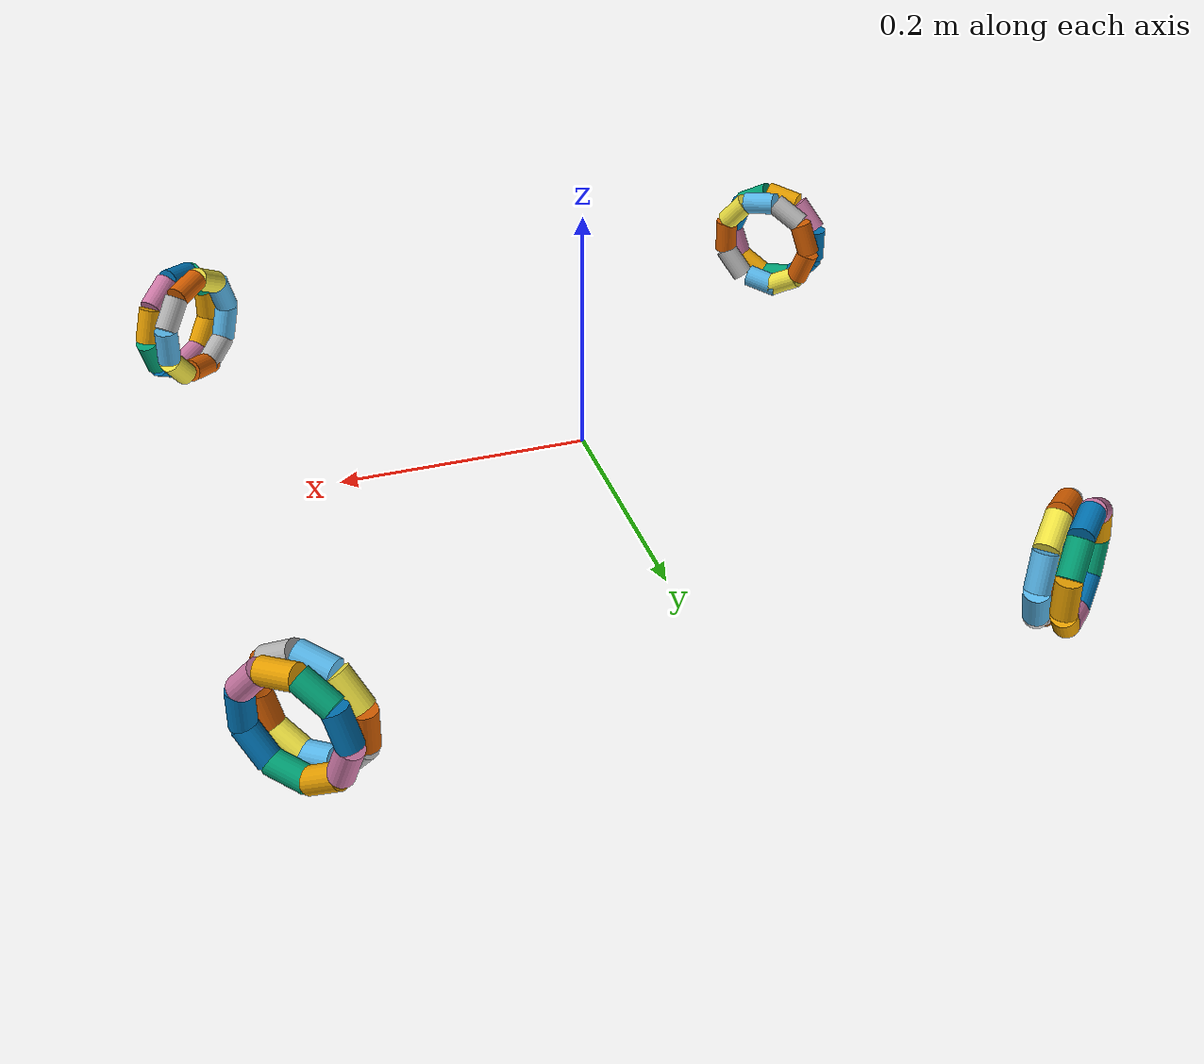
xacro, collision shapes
<?xml version='1.0'?>
<robot name="4_wheel_omni" xmlns:xacro="http://www.ros.org/wiki/xacro">
  <xacro:include filename="$(find quadwheel)/model/connector.xacro"/>
  <xacro:include filename="$(find quadwheel)/model/ros2_control.xacro"/>

  <!-- World Link -->
  <link name="base_link" />
  <joint name="base_to_chassis" type="fixed">
    <parent link="base_link"/>
    <child link="chassis"/>
  </joint>

  <!-- Chassis -->
  <link name="chassis">
    <visual>
      <origin xyz="0 0 0" rpy="0 0 0" />
      <geometry>
        <mesh filename="file://$(find quadwheel)/meshes/chassis.stl" />
      </geometry>
      <material name="">
        <color rgba="1 1 0 1" />
      </material>
    </visual>
    <inertial>
      <origin xyz="0 0 0" rpy="0 0 0" />
      <mass value="1"/>
      <inertia ixx="0.0001" ixy="0.0" ixz="0.0" iyy="0.0001" iyz="0.0" izz="0.0001"/>
    </inertial>

  </link>

  <gazebo reference="chassis">
    <mu1>0.2</mu1>
    <mu2>0.2</mu2>
    <material>Gazebo/Green</material>
  </gazebo>

  <!--Wheel Rims -->
  <xacro:connector name="1" parent="chassis" xyz="0.228 0.228 0.01" rpy="1.57 0 -0.7854" GAZEBO_color = "Gazebo/Red"/>
  <xacro:connector name="2" parent="chassis" xyz="0.228 -0.228 0.01" rpy="1.57 0 -2.3562" GAZEBO_color = "Gazebo/Blue"/>
  <xacro:connector name="3" parent="chassis" xyz="-0.228 -0.228 0.01" rpy="1.57 0 -3.9270" GAZEBO_color = "Gazebo/Green"/>
  <xacro:connector name="4" parent="chassis" xyz="-0.228 0.228 0.01" rpy="1.57 0 -5.4978" GAZEBO_color = "Gazebo/Yellow"/>

  <!-- Motors (May not need!)-->
  <transmission name="tran1">
    <type>transmission_interface/SimpleTransmission</type>
    <joint name="chassis_C1_joint">
      <hardwareInterface>hardware_interface/EffortJointInterface</hardwareInterface>
    </joint>
    <actuator name="motor1">
      <hardwareInterface>hardware_interface/EffortJointInterface</hardwareInterface>
      <mechanicalReduction>1</mechanicalReduction>
    </actuator>
  </transmission>

  <transmission name="tran2">
    <type>transmission_interface/SimpleTransmission</type>
    <joint name="chassis_C2_joint">
      <hardwareInterface>hardware_interface/EffortJointInterface</hardwareInterface>
    </joint>
    <actuator name="motor2">
      <hardwareInterface>hardware_interface/EffortJointInterface</hardwareInterface>
      <mechanicalReduction>1</mechanicalReduction>
    </actuator>
  </transmission>

  <transmission name="tran3">
    <type>transmission_interface/SimpleTransmission</type>
    <joint name="chassis_C3_joint">
      <hardwareInterface>hardware_interface/EffortJointInterface</hardwareInterface>
    </joint>
    <actuator name="motor3">
      <hardwareInterface>hardware_interface/EffortJointInterface</hardwareInterface>
      <mechanicalReduction>1</mechanicalReduction>
    </actuator>
  </transmission>

  <transmission name="tran4">
    <type>transmission_interface/SimpleTransmission</type>
    <joint name="chassis_C4_joint">
      <hardwareInterface>hardware_interface/EffortJointInterface</hardwareInterface>
    </joint>
    <actuator name="motor4">
      <hardwareInterface>hardware_interface/EffortJointInterface</hardwareInterface>
      <mechanicalReduction>1</mechanicalReduction>
    </actuator>
  </transmission>

</robot>

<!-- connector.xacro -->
<robot xmlns:xacro="http://www.ros.org/wiki/xacro">
<xacro:include filename="$(find quadwheel)/model/rim.xacro"/>
<xacro:macro name="connector" params="name parent xyz rpy GAZEBO_color">
  <link name="C${name}">
    <inertial>
      <origin xyz="0 0 -0.0286" rpy="0 0 0" />
      <mass value="0.10"/>
      <inertia ixx="7.6e-5" ixy="0.0" ixz="0.0" iyy="7.6e-5" iyz="0.0" izz="0.000125"/>
    </inertial>

    <visual>
      <origin xyz="0 0 -0.0286" rpy="0 0 0" />
      <geometry>
        <cylinder radius="0.0318" length="0.0572"/>
      </geometry>
    </visual>

  </link>

  <joint name="${parent}_C${name}_joint" type="continuous">
    <parent link="${parent}"/>
    <child link="C${name}"/>
    <origin xyz = "${xyz}" rpy = "${rpy}"/>
    <axis xyz = "0 0 1"/>
    <limit velocity="1.0" effort="30" />
  </joint>

  <!-- Wheel Rims -->
  <xacro:rim name="wheel_${name}" parent="C${name}" xyz="0 0 -0.0572" rpy="0 0 0" GAZEBO_color = "${GAZEBO_color}"/>

  <gazebo reference="C${name}">
    <material value= "${GAZEBO_color}"/>
  </gazebo>

</xacro:macro>
</robot>

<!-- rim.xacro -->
<robot xmlns:xacro="http://www.ros.org/wiki/xacro">
<xacro:include filename="$(find quadwheel)/model/roller.xacro"/>
<xacro:macro name="rim" params="name parent xyz rpy GAZEBO_color">
  <link name="rim_${name}_link">
    <inertial>
      <origin xyz="0 0 -0.0182" rpy="0 0 0" />
      <mass value="0.10"/>
      <inertia ixx="7.6e-5" ixy="0.0" ixz="0.0" iyy="7.6e-5" iyz="0.0" izz="0.000125"/>
    </inertial>

    <visual>
      <origin xyz="0 0 -0.0182" rpy="0 0 0" />
      <geometry>
        <cylinder radius="0.050" length="0.0364"/>
      </geometry>
    </visual>

  </link>

  <joint name="${parent}_rim_${name}_joint" type="fixed">
    <parent link="${parent}"/>
    <child link="rim_${name}_link"/>
    <axis xyz = "0 0 1"/>
    <origin xyz = "${xyz}" rpy = "${rpy}"/>

  </joint>

<xacro:roller name="1" parent="${name}"  xyz="0.0415 0 -0.0284" rpy="1.57 0 0" GAZEBO_color = "${GAZEBO_color}"/>
<xacro:roller name="2" parent="${name}"  xyz="0.0390 0.0142 -0.008" rpy="1.57 0 0.3491" GAZEBO_color = "${GAZEBO_color}"/>
<xacro:roller name="3" parent="${name}"  xyz="0.0318 0.0267 -0.0284" rpy="1.57 0 0.6981" GAZEBO_color = "${GAZEBO_color}"/>
<xacro:roller name="4" parent="${name}"  xyz="0.0208 0.0359 -0.008" rpy="1.57 0 1.0472" GAZEBO_color = "${GAZEBO_color}"/>
<xacro:roller name="5" parent="${name}"  xyz="0.0072 0.0409 -0.0284" rpy="1.57 0 1.3963" GAZEBO_color = "${GAZEBO_color}"/>
<xacro:roller name="6" parent="${name}"  xyz="-0.0072 0.0409 -0.008" rpy="1.57 0 1.7453" GAZEBO_color = "${GAZEBO_color}"/>
<xacro:roller name="7" parent="${name}"  xyz="-0.0208 0.0359 -0.0284" rpy="1.57 0 2.0944" GAZEBO_color = "${GAZEBO_color}"/>
<xacro:roller name="8" parent="${name}"  xyz="-0.0318 0.0267 -0.008" rpy="1.57 0 2.4435" GAZEBO_color = "${GAZEBO_color}"/>
<xacro:roller name="9" parent="${name}"  xyz="-0.0390 0.0142 -0.0284" rpy="1.57 0 2.7925" GAZEBO_color = "${GAZEBO_color}"/>
<xacro:roller name="10" parent="${name}"  xyz="-0.0415 0 -0.008" rpy="1.57 0 3.1416" GAZEBO_color = "${GAZEBO_color}"/>
<xacro:roller name="11" parent="${name}"  xyz="-0.0390 -0.0142 -0.0284" rpy="1.57 0 3.4907" GAZEBO_color = "${GAZEBO_color}"/>
<xacro:roller name="12" parent="${name}"  xyz="-0.0318 -0.0267 -0.008" rpy="1.57 0 3.8397" GAZEBO_color = "${GAZEBO_color}"/>
<xacro:roller name="13" parent="${name}"  xyz="-0.0208 -0.0359 -0.0284" rpy="1.57 0 4.1888" GAZEBO_color = "${GAZEBO_color}"/>
<xacro:roller name="14" parent="${name}"  xyz="-0.00072 -0.0409 -0.008" rpy="1.57 0 4.5379" GAZEBO_color = "${GAZEBO_color}"/>
<xacro:roller name="15" parent="${name}"  xyz="0.0072 -0.0409 -0.0284" rpy="1.57 0 4.8869" GAZEBO_color = "${GAZEBO_color}"/>
<xacro:roller name="16" parent="${name}"  xyz="0.0208 -0.0359 -0.008" rpy="1.57 0 5.2360" GAZEBO_color = "${GAZEBO_color}"/>
<xacro:roller name="17" parent="${name}"  xyz="0.0318 -0.0267 -0.0284" rpy="1.57 0 5.5851" GAZEBO_color = "${GAZEBO_color}"/>
<xacro:roller name="18" parent="${name}"  xyz="0.0390 -0.0142 -0.008" rpy="1.57 0 5.9341" GAZEBO_color = "${GAZEBO_color}"/>

<gazebo reference="rim_${name}_link">
  <material value= "${GAZEBO_color}"/>
</gazebo>

</xacro:macro>
</robot>

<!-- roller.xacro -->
<robot xmlns:xacro="http://www.ros.org/wiki/xacro">
  <xacro:macro name="roller" params="name parent xyz rpy GAZEBO_color">
  <link name="roller_${name}_rim_${parent}_link">
    <inertial>
      <origin xyz="0 0 0" rpy="0 0 0" />
      <inertia ixx="1e-6" ixy="0.0" ixz="0.0" iyy="1e-6" iyz="0.0" izz="1e-7"/>
      <mass value="0.010"/>
    </inertial>
    <visual>
      <origin xyz="0 0 0" rpy="0 0 0" />
      <geometry>
        <cylinder radius="0.01" length="0.03"/>
      </geometry>
    </visual>

    <collision>
      <origin xyz="0 0 0" rpy="0 0 0" />
      <geometry>
        <cylinder radius="0.01" length="0.03"/>
      </geometry>
    </collision>
  </link>

  <joint name="roller_${name}_rim_${parent}_joint" type="continuous">
    <parent link="rim_${parent}_link"/>
    <child link="roller_${name}_rim_${parent}_link"/>
    <axis xyz="0 0 1"/>
    <origin xyz="${xyz}" rpy="${rpy}"/>
    <limit effort="1000" velocity="31.4"/>
  </joint>

  <gazebo reference="roller_${name}_rim_${parent}_link">
    <mu1 value="0.001"/>
    <mu2 value="0.002"/>
    <material value= "Gazebo/Grey"/>
  </gazebo>

  </xacro:macro>

</robot>
